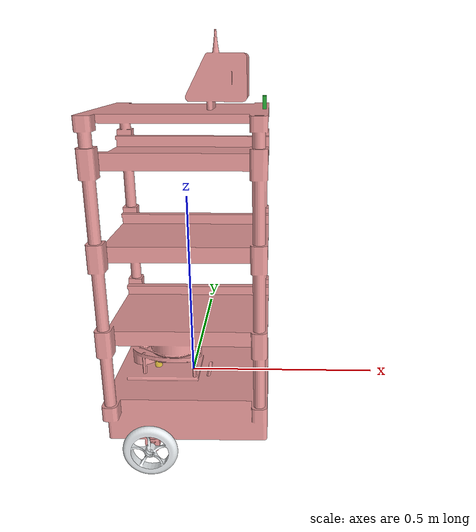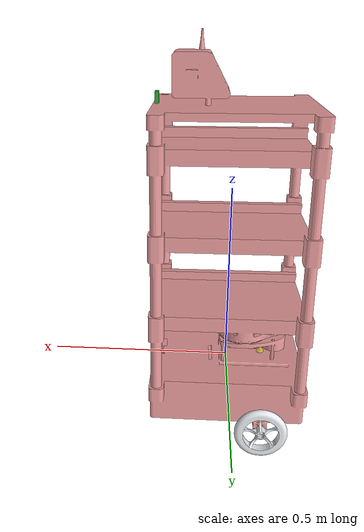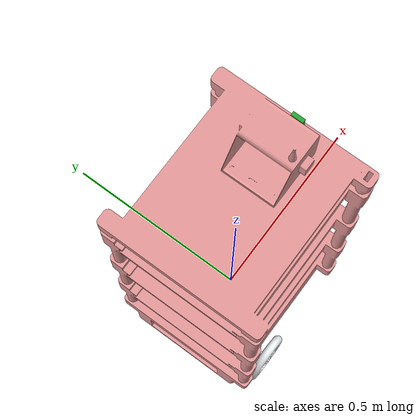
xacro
<?xml version="1.0" encoding="utf-8"?>
<robot name="recolector_v8" xmlns:xacro="http://www.ros.org/wiki/xacro" >

  <link
    name="base_link">
    <inertial>
      <origin
        xyz="-0.000711812483994489 0.00172160024482687 0.257994794286112"
        rpy="0 0 0" />
      <mass
        value="1.4551450949967" />
      <inertia
        ixx="0.0265498248699101"
        ixy="0"
        ixz="0"
        iyy="0.0354943837149582"
        iyz="0"
        izz="0.0584651005440145" />
    </inertial>
    <visual>
      <origin
        xyz="0 0 0"
        rpy="0 0 0" />
      <geometry>
        <mesh
          filename="file://$(find recolector_ros2)/meshes/base_link.STL" />
      </geometry>
      <material
        name="">
        <color
          rgba="0.894117647058823 0.596078431372549 0.596078431372549 1" />
      </material>
    </visual>
    <collision>
      <origin
        xyz="0 0 0"
        rpy="0 0 0" />
      <geometry>
        <mesh
          filename="file://$(find recolector_ros2)/meshes/base_link.STL" />
      </geometry>
    </collision>
  </link>

  <gazebo reference="base_link">
    <mu1>200</mu1>
    <mu2>200</mu2>
    <kp>1000000</kp>
    <kd>1</kd>
  </gazebo>

  <!-- BASE_FOOTPRINT LINK -->

  <joint name="base_footprint_joint" type="fixed">
      <parent link="base_link"/>
      <child link="base_footprint"/>
      <origin xyz="0 0 0" rpy="0 0 0"/>
  </joint>

  <link name="base_footprint">
  </link>

  <link
    name="rueda_derecha_link">
    <inertial>
      <origin
        xyz="-1.6264494554219E-06 1.25045503471255E-06 -0.0119390562108947"
        rpy="0 0 0" />
      <mass
        value="0.529919806264885" />
      <inertia
        ixx="0.002"
        ixy="0"
        ixz="0"
        iyy="0.002"
        iyz="0"
        izz="0.001" />
    </inertial>
    <visual>
      <origin
        xyz="0 0 0"
        rpy="0 0 0" />
      <geometry>
        <mesh
          filename="file://$(find recolector_ros2)/meshes/rueda_derecha_link.STL" />
      </geometry>
      <material
        name="">
        <color
          rgba="0.898039215686275 0.917647058823529 0.929411764705882 1" />
      </material>
    </visual>
    <collision>
      <origin
        xyz="0 0 0"
        rpy="0 0 0" />
      <geometry>
        <mesh
          filename="file://$(find recolector_ros2)/meshes/rueda_derecha_link.STL" />
      </geometry>
    </collision>
  </link>

  <gazebo reference="rueda_derecha_link">
    <mu1>200</mu1>
    <mu2>200</mu2>
    <kp>1000000</kp>
    <kd>1</kd>
    <material>Gazebo/Gray</material>
  </gazebo>

  <joint
    name="rueda_derecha_joint"
    type="continuous">
    <origin
      xyz="-0.09446 -0.1758 -0.1338"
      rpy="1.5708 -0.074776 3.1416" />
    <parent
      link="base_link" />
    <child
      link="rueda_derecha_link" />
    <axis
      xyz="0 0 1" />
    <limit
      effort="100"
      velocity="100" />
    <dynamics
      damping="0.1"
      friction="0.1" />
  </joint>
  <link
    name="rueda_izquiera_link">
    <inertial>
      <origin
        xyz="-1.7946015785919E-06 -9.9416029515631E-07 0.0119390562153693"
        rpy="0 0 0" />
      <mass
        value="0.529919806574137" />
      <inertia
        ixx="0.002"
        ixy="0"
        ixz="0"
        iyy="0.002"
        iyz="0"
        izz="0.001" />
    </inertial>
    <visual>
      <origin
        xyz="0 0 0"
        rpy="0 0 0" />
      <geometry>
        <mesh
          filename="file://$(find recolector_ros2)/meshes/rueda_izquiera_link.STL" />
      </geometry>
      <material
        name="">
        <color
          rgba="0.898039215686275 0.917647058823529 0.929411764705882 1" />
      </material>
    </visual>
    <collision>
      <origin
        xyz="0 0 0"
        rpy="0 0 0" />
      <geometry>
        <mesh
          filename="file://$(find recolector_ros2)/meshes/rueda_izquiera_link.STL" />
      </geometry>
    </collision>
  </link>
  <joint
    name="rueda_izquiera_joint"
    type="continuous">
    <origin
      xyz="-0.09446 0.1758 -0.1338"
      rpy="-1.5708 0.074776 0" />
    <parent
      link="base_link" />
    <child
      link="rueda_izquiera_link" />
    <axis
      xyz="0 0 1" />
    <limit
      effort="100"
      velocity="100" />
    <dynamics
      damping="0.1"
      friction="0.1" />
  </joint>

  <gazebo reference="rueda_izquiera_link">
    <mu1>200</mu1>
    <mu2>200</mu2>
    <kp>1000000</kp>
    <kd>1</kd>
    <material>Gazebo/Gray</material>
  </gazebo>

  <link
    name="base_castor_link">
    <inertial>
      <origin
        xyz="0.0191648864694682 -0.00146496473370206 0.0128267514302346"
        rpy="0 0 0" />
      <mass
        value="0.215171406252836" />
      <inertia
        ixx="0.000121585630266892"
        ixy="2.48092821183915E-07"
        ixz="-2.41578569761316E-05"
        iyy="0.000127975596762742"
        iyz="1.57442789839309E-06"
        izz="0.000165459219137249" />
    </inertial>
    <visual>
      <origin
        xyz="0 0 0"
        rpy="0 0 0" />
      <geometry>
        <mesh
          filename="file://$(find recolector_ros2)/meshes/base_castor_link.STL" />
      </geometry>
      <material
        name="">
        <color
          rgba="0.63921568627451 0.666666666666667 0.67843137254902 1" />
      </material>
    </visual>
    <collision>
      <origin
        xyz="0 0 0"
        rpy="0 0 0" />
      <geometry>
        <mesh
          filename="file://$(find recolector_ros2)/meshes/base_castor_link.STL" />
      </geometry>
    </collision>
  </link>

  <gazebo reference="base_castor_link">
    <mu1>0.1</mu1>
    <mu2>0.1</mu2>
    <kp>1000000</kp>
    <kd>1</kd>
    <material>Gazebo/Gray</material>
  </gazebo>

  <joint
    name="base_castor_joint"
    type="continuous">
    <origin
      xyz="0.11414 0 -0.13548"
      rpy="-3.1366 0 0" />
    <parent
      link="base_link" />
    <child
      link="base_castor_link" />
    <axis
      xyz="0 0 1" />
    <limit
      effort="100"
      velocity="100" />
    <dynamics
      damping="0.1"
      friction="0.1" />
  </joint>
  <link
    name="rueda_castor_link">
    <inertial>
      <origin
        xyz="-7.07219005580129E-12 -3.79738573919042E-10 -6.69822119991892E-09"
        rpy="0 0 0" />
      <mass
        value="0.106094497392739" />
      <inertia
        ixx="0.002"
        ixy="0"
        ixz="0"
        iyy="0.002"
        iyz="0"
        izz="0.001" />
    </inertial>
    <visual>
      <origin
        xyz="0 0 0"
        rpy="0 0 0" />
      <geometry>
        <mesh
          filename="file://$(find recolector_ros2)/meshes/rueda_castor_link.STL" />
      </geometry>
      <material
        name="">
        <color
          rgba="1 1 1 1" />
      </material>
    </visual>
    <collision>
      <origin
        xyz="0 0 0"
        rpy="0 0 0" />
      <geometry>
        <mesh
          filename="file://$(find recolector_ros2)/meshes/rueda_castor_link.STL" />
      </geometry>
    </collision>
  </link>

  <gazebo reference="rueda_castor_link">
    <mu1>0.01</mu1>
    <mu2>0.01</mu2>
    <kp>1000000</kp>
    <kd>1</kd>
    <material>Gazebo/Gray</material>
  </gazebo>

  <joint
    name="rueda_castor_joint"
    type="continuous">
    <origin
      xyz="0.037463 -0.0019644 0.036457"
      rpy="0 -1.5658 1.5708" />
    <parent
      link="base_castor_link" />
    <child
      link="rueda_castor_link" />
    <axis
      xyz="0 0 1" />
    <limit
      effort="100"
      velocity="100" />
    <dynamics
      damping="0.1"
      friction="0.1" />
  </joint>

 <link name="Lidar_link">
  <inertial>
    <origin xyz="0 0 0.0" rpy="0 0 0.0"/>
    <mass value="0.01"/>
    <inertia ixx="0.0001"  ixy="0"  ixz="0" iyy="0.0001" iyz="0" izz="0.0001" />
  </inertial>
  <visual>
    <origin xyz="0 0 0" rpy="0 0 0"/>
    <geometry>
       <cylinder radius="0.01" length="0.05"/>
    </geometry>
    <material
      name="">
      <color
        rgba="1 1 0 0.5" />
    </material>
  </visual>
  <collision>
    <origin xyz="0 0 0.0" rpy="0 0 0"/>
    <geometry>
       <cylinder radius="0.01" length="0.05"/>
    </geometry>
    <material
      name="">
      <color
        rgba="1 1 1 0.5" />
    </material>
  </collision>
  </link>

  <joint
    name="Lidar_joint"
    type="fixed">
    <origin
      xyz="-0.1 0 0.020"
      rpy="0 -0.087 0" />
    <parent
      link="base_link" />
    <child
      link="Lidar_link" />
    <axis
      xyz="1 0 0" />
  </joint>

 <!-- Camera -->
  <link name="camera_link">
    <collision>
      <origin xyz="0 0 0" rpy="0 0 0"/>
      <geometry>
        <box size="0.010 0.03 0.03"/>
      </geometry>
    </collision>

    <visual>
      <origin xyz="0 0 0" rpy="0 0 0"/>
      <geometry>
        <box size="0.010 0.03 0.03"/>
      </geometry>
      <material name="green"/>
    </visual>
  </link>

  <joint name="camera_joint" type="fixed">
    <axis xyz="0 1 0" />
    <origin xyz="0.2 0 0.735" rpy="0 0 0"/>
    <parent link="base_link"/>
    <child link="camera_link"/>
  </joint>

 <gazebo reference="Lidar_link">
    <sensor name="lidar" type="ray">
      <always_on>true</always_on>
      <visualize>true</visualize>
      <update_rate>20</update_rate>
      <ray>
        <scan>
          <horizontal>
            <samples>120</samples>
            <resolution>1.000000</resolution>
            <min_angle>-1.57079</min_angle>
            <max_angle>1.57079</max_angle>
          </horizontal>
        </scan>
        <range>
          <min>0.07</min>
          <max>5.0</max>
          <resolution>0.015</resolution>
        </range>
        <noise>
          <type>gaussian</type>
          <mean>0.0</mean>
          <stddev>0.01</stddev>
        </noise>
      </ray>
      <plugin name="scan" filename="libgazebo_ros_ray_sensor.so">
        <ros>
          <remapping>~/out:=scan</remapping>
        </ros>
        <output_type>sensor_msgs/LaserScan</output_type>
        <frame_name>Lidar_link</frame_name>
      </plugin>
    </sensor>
  </gazebo>

  <gazebo reference="Lidar_link">
    <mu1>0.1</mu1>
    <mu2>0.1</mu2>
    <kp>1000000</kp>
    <kd>1</kd>
    <material>Gazebo/Yellow</material>
  </gazebo>

  <gazebo reference="camera_link">
    <material>Gazebo/Green</material>
    <sensor type="camera" name="camera">
      <update_rate>30.0</update_rate>
      <visualize></visualize>
      <camera name="head">
        <horizontal_fov>1.3962634</horizontal_fov>
        <image>
          <width>800</width>
          <height>800</height>
          <format>R8G8B8</format>
        </image>
        <clip>
          <near>0.02</near>
          <far>300</far>
        </clip>
      </camera>
      <plugin name="camera_controller" filename="libgazebo_ros_camera.so">
        <alwaysOn>true</alwaysOn>
        <updateRate>0.0</updateRate>
        <cameraName>spcbot/camera</cameraName>
        <imageTopicName>image_raw</imageTopicName>
        <cameraInfoTopicName>camera_info</cameraInfoTopicName>
        <frameName>camera</frameName>
        <hackBaseline>0.07</hackBaseline>
        <distortionK1>0.0</distortionK1>
        <distortionK2>0.0</distortionK2>
        <distortionK3>0.0</distortionK3>
        <distortionT1>0.0</distortionT1>
        <distortionT2>0.0</distortionT2>
      </plugin>
    </sensor>
  </gazebo>

  <gazebo>
    <plugin name="gazebo_ros_joint_state_publisher"
        filename="libgazebo_ros_joint_state_publisher.so">
        <update_rate>100</update_rate>
        <joint_name>base_castor_joint</joint_name>
        <joint_name>rueda_castor_joint</joint_name>
    </plugin>
  </gazebo>

</robot>
